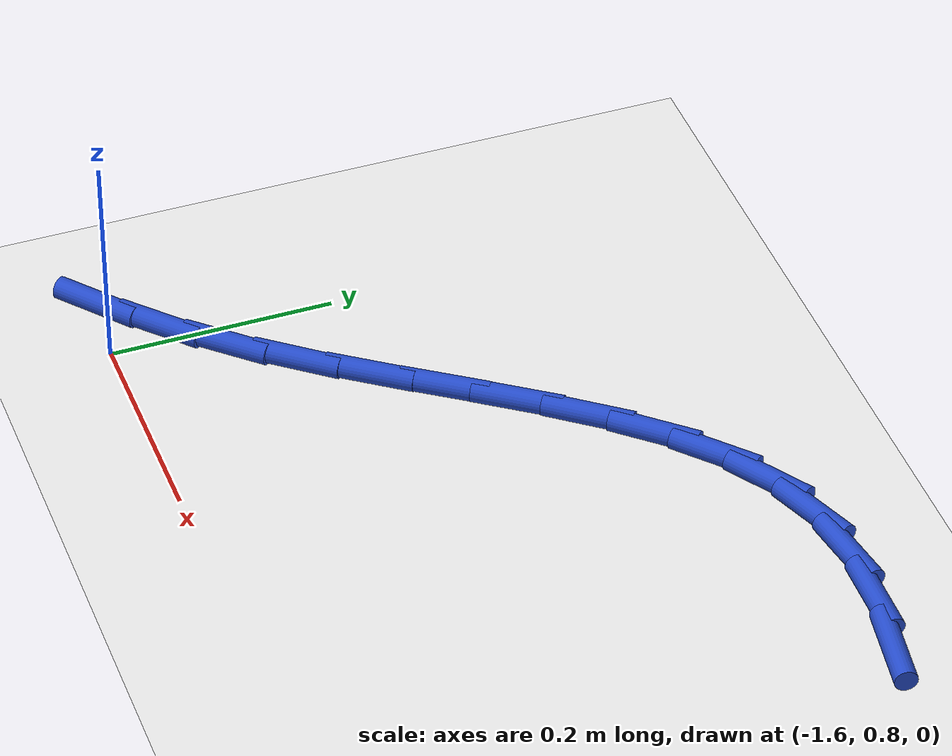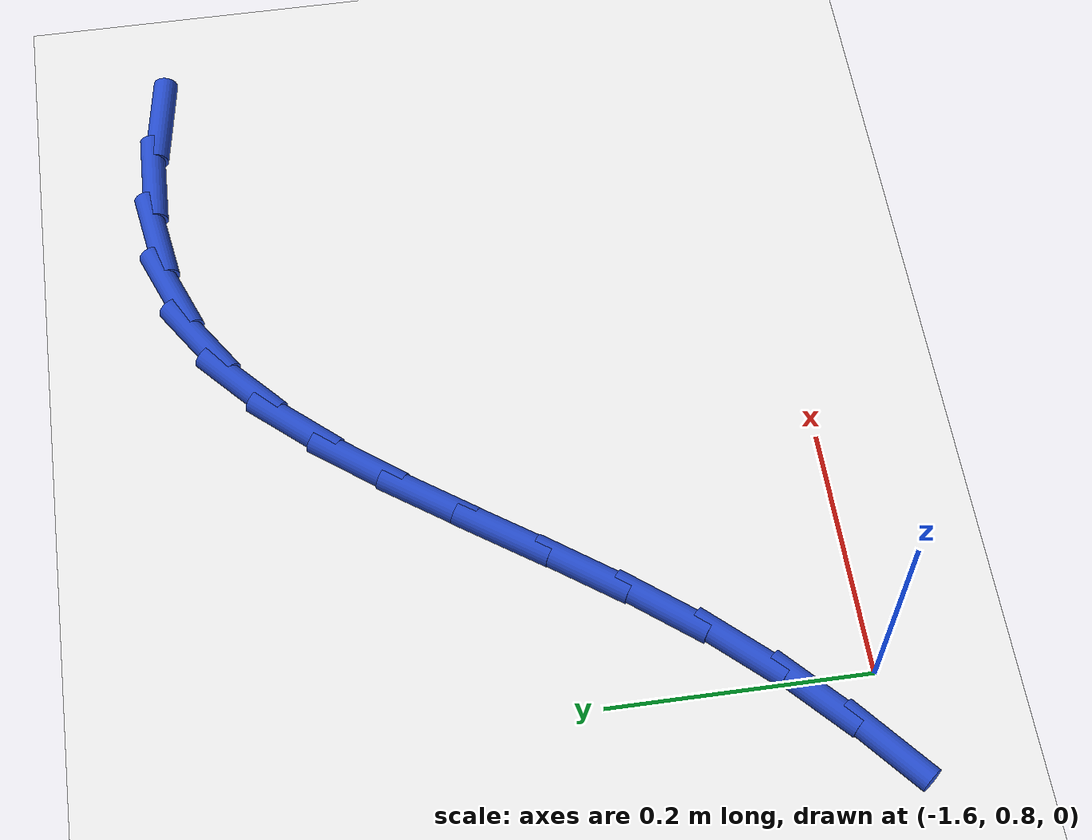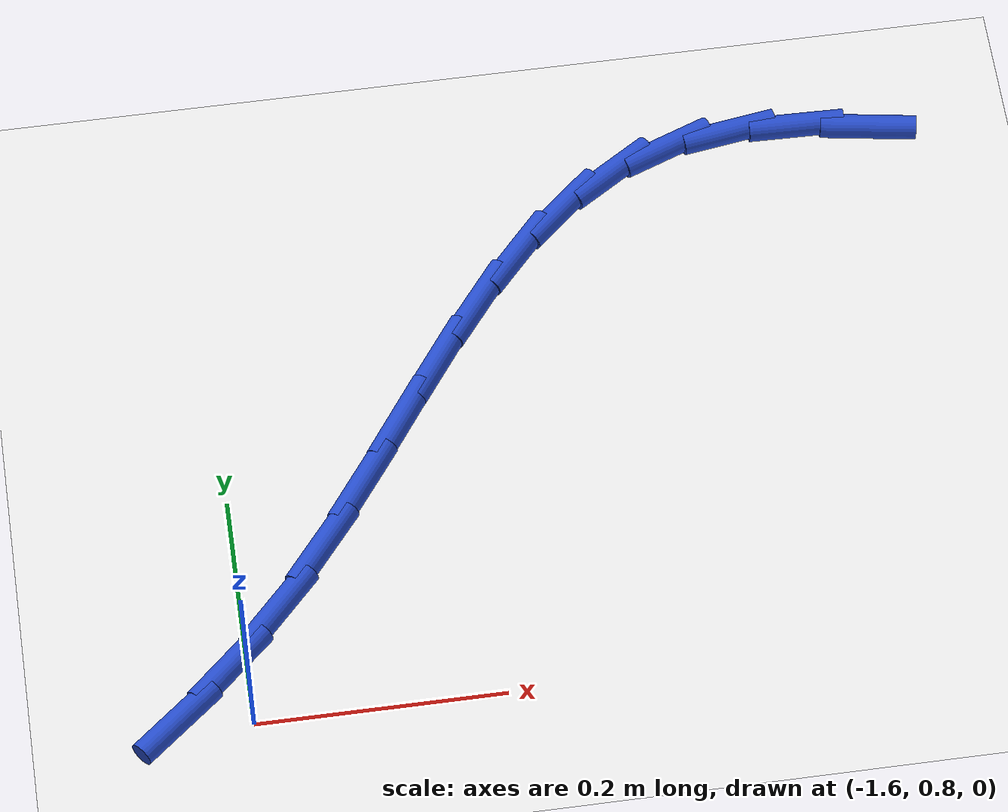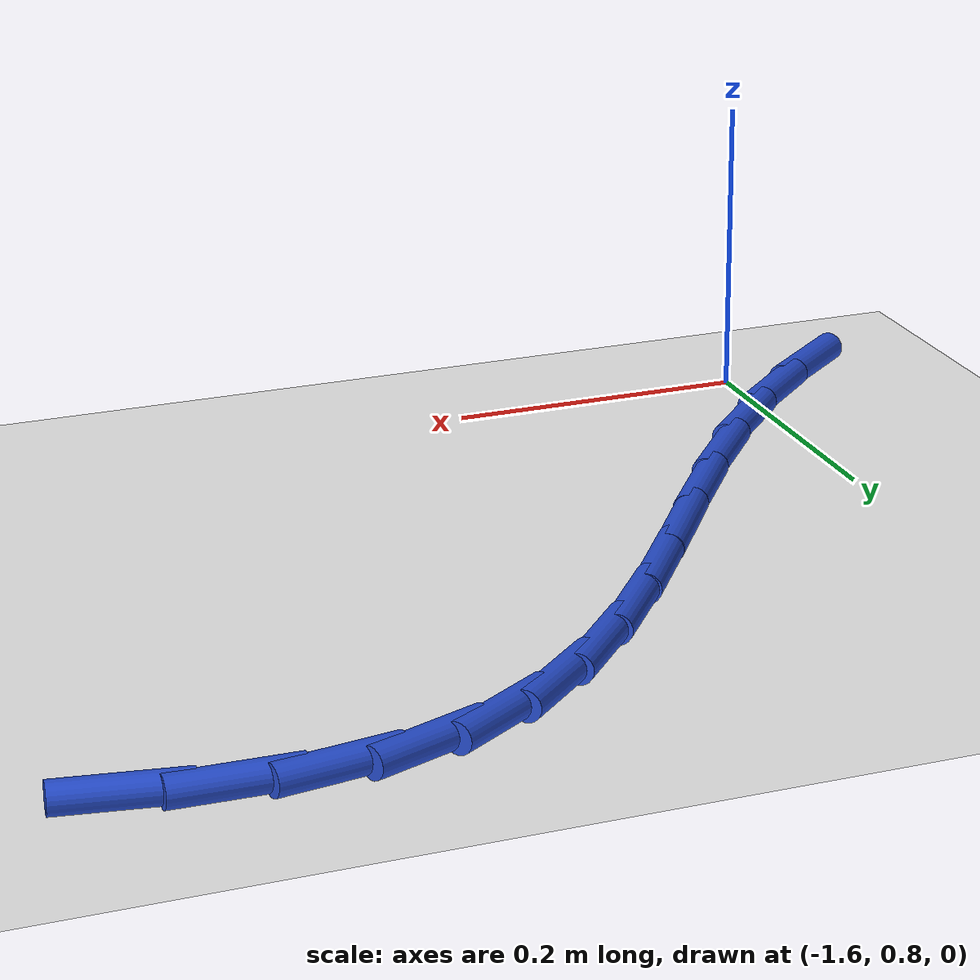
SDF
<sdf version="1.6">
 <world name="default">
  <model name="ground_plane">
   <static>1</static>
   <link name="link">
    <collision name="collision">
     <geometry><plane><normal>0 0 1</normal><size>100 100</size></plane></geometry>
     <surface><friction><ode><mu>100</mu><mu2>50</mu2></ode></friction></surface>
    </collision>
    <visual name="visual">
     <cast_shadows>0</cast_shadows>
     <geometry><plane><normal>0 0 1</normal><size>100 100</size></plane></geometry>
     <material>
      <script><uri>file://media/materials/scripts/gazebo.material</uri><name>Gazebo/WhiteGlow</name></script>
     </material>
    </visual>
   </link>
  </model>
  <model name="line">
   <link name="link_28">
    <pose>-1.029974200689238 1.2827829426759103 0.01 0 1.57 -0.16038175752786293</pose>
    <collision name="collision">
     <geometry><cylinder><radius>0.01</radius><length>0.08</length></cylinder></geometry>
    </collision>
    <visual name="visual">
     <material>
      <script><name>Gazebo/Blue</name><uri>file://media/materials/scripts/gazebo.material</uri></script>
     </material>
     <geometry><cylinder><radius>0.01</radius><length>0.08</length></cylinder></geometry>
    </visual>
   </link>
   <link name="link_29">
    <pose>-1.0894592418231892 1.2924059082492685 0.01 0 1.57 -0.021401694693288002</pose>
    <collision name="collision">
     <geometry><cylinder><radius>0.01</radius><length>0.08</length></cylinder></geometry>
    </collision>
    <visual name="visual">
     <material>
      <script><name>Gazebo/Blue</name><uri>file://media/materials/scripts/gazebo.material</uri></script>
     </material>
     <geometry><cylinder><radius>0.01</radius><length>0.08</length></cylinder></geometry>
    </visual>
   </link>
   <link name="link_30">
    <pose>-1.1464911735180379 1.293626674628435 0.01 0 1.57 0.1541923685662428</pose>
    <collision name="collision">
     <geometry><cylinder><radius>0.01</radius><length>0.08</length></cylinder></geometry>
    </collision>
    <visual name="visual">
     <material>
      <script><name>Gazebo/Blue</name><uri>file://media/materials/scripts/gazebo.material</uri></script>
     </material>
     <geometry><cylinder><radius>0.01</radius><length>0.08</length></cylinder></geometry>
    </visual>
   </link>
   <link name="link_31">
    <pose>-1.200214613714817 1.2852766502701394 0.01 0 1.57 0.36620900793209543</pose>
    <collision name="collision">
     <geometry><cylinder><radius>0.01</radius><length>0.08</length></cylinder></geometry>
    </collision>
    <visual name="visual">
     <material>
      <script><name>Gazebo/Blue</name><uri>file://media/materials/scripts/gazebo.material</uri></script>
     </material>
     <geometry><cylinder><radius>0.01</radius><length>0.08</length></cylinder></geometry>
    </visual>
   </link>
   <link name="link_32">
    <pose>-1.2498130907715523 1.2662552254534163 0.01 0 1.57 0.5726705681889378</pose>
    <collision name="collision">
     <geometry><cylinder><radius>0.01</radius><length>0.08</length></cylinder></geometry>
    </collision>
    <visual name="visual">
     <material>
      <script><name>Gazebo/Blue</name><uri>file://media/materials/scripts/gazebo.material</uri></script>
     </material>
     <geometry><cylinder><radius>0.01</radius><length>0.08</length></cylinder></geometry>
    </visual>
   </link>
   <link name="link_33">
    <pose>-1.2953067679597463 1.236923506121651 0.01 0 1.57 0.7312499793924401</pose>
    <collision name="collision">
     <geometry><cylinder><radius>0.01</radius><length>0.08</length></cylinder></geometry>
    </collision>
    <visual name="visual">
     <material>
      <script><name>Gazebo/Blue</name><uri>file://media/materials/scripts/gazebo.material</uri></script>
     </material>
     <geometry><cylinder><radius>0.01</radius><length>0.08</length></cylinder></geometry>
    </visual>
   </link>
   <link name="link_34">
    <pose>-1.3375212793985105 1.199049865995557 0.01 0 1.57 0.8421779276185614</pose>
    <collision name="collision">
     <geometry><cylinder><radius>0.01</radius><length>0.08</length></cylinder></geometry>
    </collision>
    <visual name="visual">
     <material>
      <script><name>Gazebo/Blue</name><uri>file://media/materials/scripts/gazebo.material</uri></script>
     </material>
     <geometry><cylinder><radius>0.01</radius><length>0.08</length></cylinder></geometry>
    </visual>
   </link>
   <link name="link_35">
    <pose>-1.3773149339950728 1.1544597661213325 0.01 0 1.57 0.9129619801892026</pose>
    <collision name="collision">
     <geometry><cylinder><radius>0.01</radius><length>0.08</length></cylinder></geometry>
    </collision>
    <visual name="visual">
     <material>
      <script><name>Gazebo/Blue</name><uri>file://media/materials/scripts/gazebo.material</uri></script>
     </material>
     <geometry><cylinder><radius>0.01</radius><length>0.08</length></cylinder></geometry>
    </visual>
   </link>
   <link name="link_36">
    <pose>-1.4155460406566596 1.1049786675451763 0.01 0 1.57 0.950628048564522</pose>
    <collision name="collision">
     <geometry><cylinder><radius>0.01</radius><length>0.08</length></cylinder></geometry>
    </collision>
    <visual name="visual">
     <material>
      <script><name>Gazebo/Blue</name><uri>file://media/materials/scripts/gazebo.material</uri></script>
     </material>
     <geometry><cylinder><radius>0.01</radius><length>0.08</length></cylinder></geometry>
    </visual>
   </link>
   <link name="link_37">
    <pose>-1.4530729082904992 1.0524320313132862 0.01 0 1.57 0.9596931511778399</pose>
    <collision name="collision">
     <geometry><cylinder><radius>0.01</radius><length>0.08</length></cylinder></geometry>
    </collision>
    <visual name="visual">
     <material>
      <script><name>Gazebo/Blue</name><uri>file://media/materials/scripts/gazebo.material</uri></script>
     </material>
     <geometry><cylinder><radius>0.01</radius><length>0.08</length></cylinder></geometry>
    </visual>
   </link>
   <link name="link_38">
    <pose>-1.4907538458038176 0.9986453184718614 0.01 0 1.57 0.9419823238499418</pose>
    <collision name="collision">
     <geometry><cylinder><radius>0.01</radius><length>0.08</length></cylinder></geometry>
    </collision>
    <visual name="visual">
     <material>
      <script><name>Gazebo/Blue</name><uri>file://media/materials/scripts/gazebo.material</uri></script>
     </material>
     <geometry><cylinder><radius>0.01</radius><length>0.08</length></cylinder></geometry>
    </visual>
   </link>
   <link name="link_39">
    <pose>-1.5294471621038443 0.9454439900671002 0.01 0 1.57 0.8968768759582632</pose>
    <collision name="collision">
     <geometry><cylinder><radius>0.01</radius><length>0.08</length></cylinder></geometry>
    </collision>
    <visual name="visual">
     <material>
      <script><name>Gazebo/Blue</name><uri>file://media/materials/scripts/gazebo.material</uri></script>
     </material>
     <geometry><cylinder><radius>0.01</radius><length>0.08</length></cylinder></geometry>
    </visual>
   </link>
   <link name="link_40">
    <pose>-1.5700111660978036 0.8946535071452008 0.01 0 1.57 0.8230811130452792</pose>
    <collision name="collision">
     <geometry><cylinder><radius>0.01</radius><length>0.08</length></cylinder></geometry>
    </collision>
    <visual name="visual">
     <material>
      <script><name>Gazebo/Blue</name><uri>file://media/materials/scripts/gazebo.material</uri></script>
     </material>
     <geometry><cylinder><radius>0.01</radius><length>0.08</length></cylinder></geometry>
    </visual>
   </link>
   <link name="link_41">
    <pose>-1.6132567556154056 0.8480193807540335 0.01 0 1.57 0.7451868697616364</pose>
    <collision name="collision">
     <geometry><cylinder><radius>0.01</radius><length>0.08</length></cylinder></geometry>
    </collision>
    <visual name="visual">
     <material>
      <script><name>Gazebo/Blue</name><uri>file://media/materials/scripts/gazebo.material</uri></script>
     </material>
     <geometry><cylinder><radius>0.01</radius><length>0.08</length></cylinder></geometry>
    </visual>
   </link>
   <link name="link_42">
    <pose>-1.6590785836203819 0.8057420447288132 0.01 0 1.57 0.6892980020030426</pose>
    <collision name="collision">
     <geometry><cylinder><radius>0.01</radius><length>0.08</length></cylinder></geometry>
    </collision>
    <visual name="visual">
     <material>
      <script><name>Gazebo/Blue</name><uri>file://media/materials/scripts/gazebo.material</uri></script>
     </material>
     <geometry><cylinder><radius>0.01</radius><length>0.08</length></cylinder></geometry>
    </visual>
   </link>
  </model>
 </world>
</sdf>
